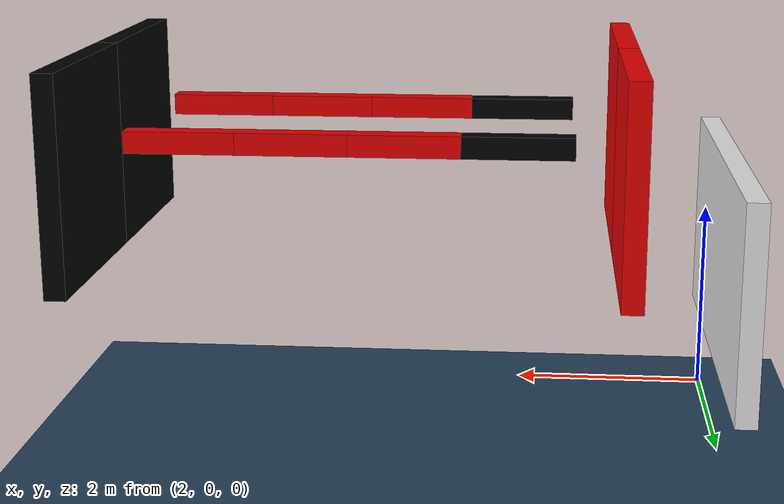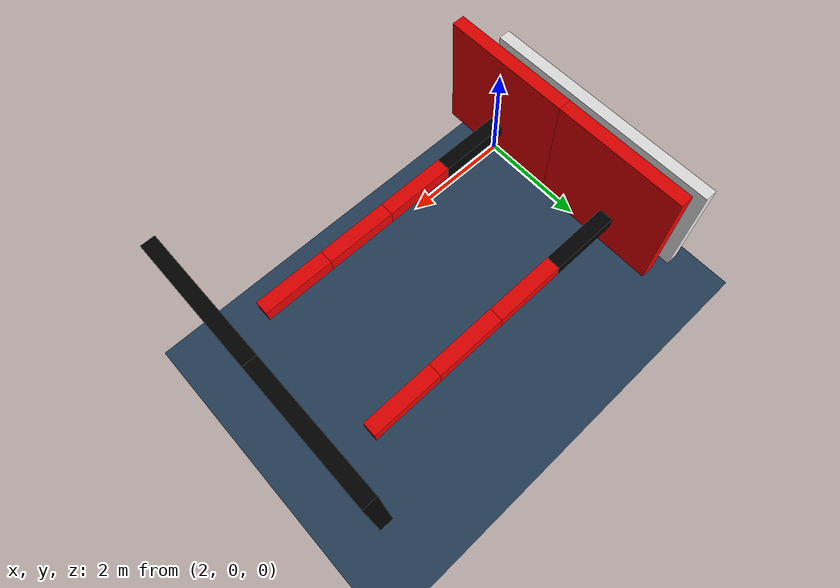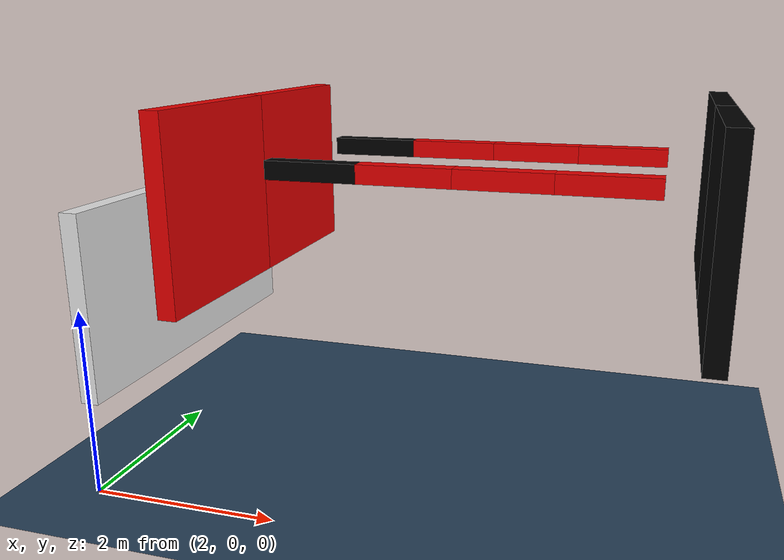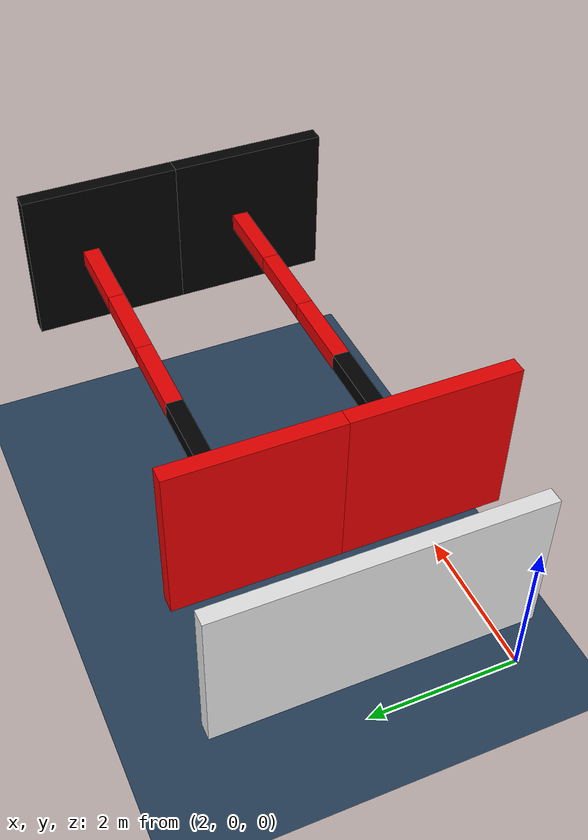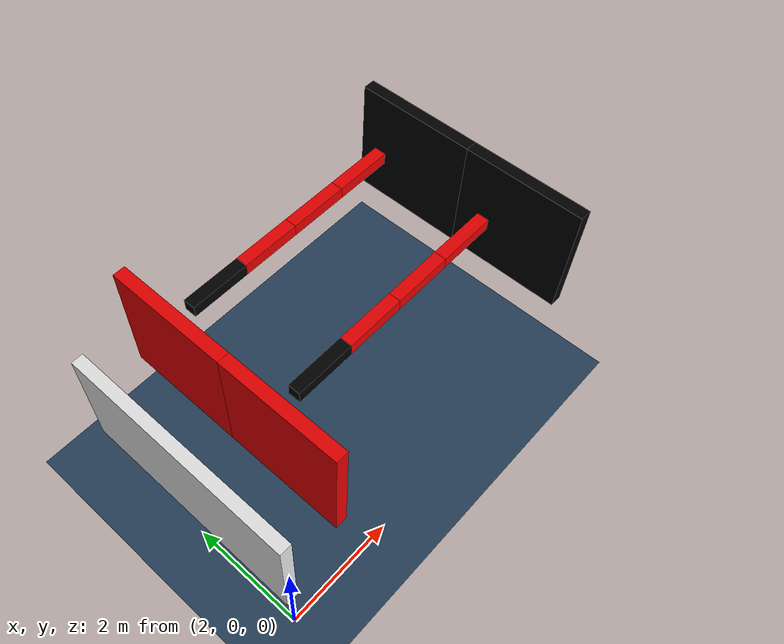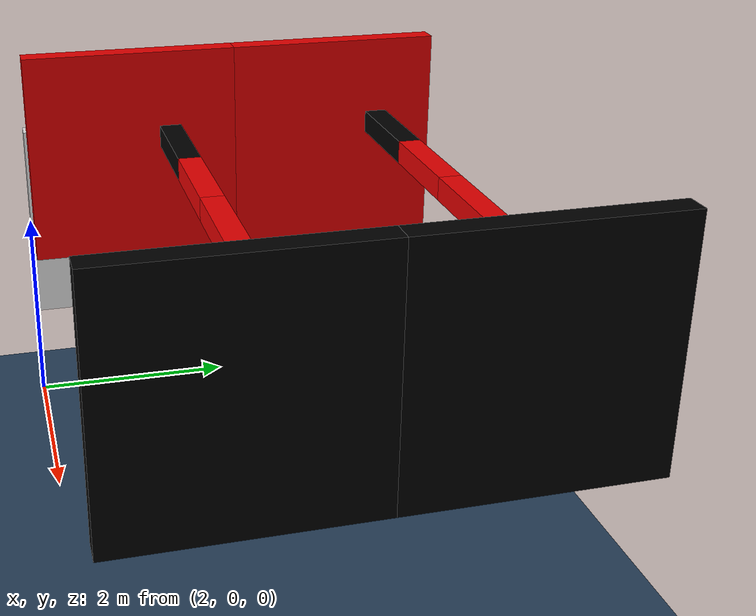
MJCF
<mujoco><option gravity="0 0 -9.81" /><worldbody><light diffuse="0.8 0.8 0.8" pos="0 0 3" dir="0 0 -1" /><geom size="10 10 .05" type="plane" material="grid" condim="3" /><body name="chassis" pos="2 2 2"><joint type="free" /><geom type="box" size=".1 2 1" rgba=".9 .9 .9 1" /><body name="module1module-top" pos="1 -1 1"><joint type="hinge" axis="1 0 0" range="-45 45" /><geom type="box" name="module1geom_free_plate" size=".1 1 1" rgba="0.9 0 0 1" /><body name="module1slide_box" pos="1 0.3 0.3"><joint name="module1slide_box_joint" type="slide" axis="1 0 0" range="-0.5 0.5" /><geom type="box" name="module1slide_box_body" size="0.5 0.1 0.1" rgba=" 0 0 0 1" /><body name="module1hingex_box_body" pos="1 0 0"><joint name="module1hingex_box_joint" type="hinge" axis="1 0 0" range="-45 45" /><geom type="box" name="module1hingex_box_body" size="0.5 0.1 0.1" rgba="0.9 0 0 1" /><body name="module1hingey_box_body" pos="1 0 0"><joint name="module1hingey_box_joint" type="hinge" axis="0 1 0" range="-45 45" /><geom type="box" name="module1geom_hingey_box" size="0.5 0.1 0.1" rgba="0.9 0 0 1" /><body name="module1hingez_box_body" pos="1 0 0"><joint name="module1hingez_box_joint" type="hinge" axis="0 0 1" range="-45 45" /><geom type="box" name="module1geom_hingez_box" size="0.5 0.1 0.1" rgba="0.9 0 0 1" /><body name="module1slide_plate" pos="1 -0.3 -0.3"><joint name="module1slide_plate_joint" type="slide" range="-0.5 0.5" /><geom type="box" name="module1slide_plate" size="0.1 1 1" rgba="0 0 0 1" /></body></body></body></body></body></body><body name="module2module-top" pos="1 1 1"><joint type="hinge" axis="1 0 0" range="-45 45" /><geom type="box" name="module2geom_free_plate" size=".1 1 1" rgba="0.9 0 0 1" /><body name="module2slide_box" pos="1 0.3 0.3"><joint name="module2slide_box_joint" type="slide" axis="1 0 0" range="-0.5 0.5" /><geom type="box" name="module2slide_box_body" size="0.5 0.1 0.1" rgba=" 0 0 0 1" /><body name="module2hingex_box_body" pos="1 0 0"><joint name="module2hingex_box_joint" type="hinge" axis="1 0 0" range="-45 45" /><geom type="box" name="module2hingex_box_body" size="0.5 0.1 0.1" rgba="0.9 0 0 1" /><body name="module2hingey_box_body" pos="1 0 0"><joint name="module2hingey_box_joint" type="hinge" axis="0 1 0" range="-45 45" /><geom type="box" name="module2geom_hingey_box" size="0.5 0.1 0.1" rgba="0.9 0 0 1" /><body name="module2hingez_box_body" pos="1 0 0"><joint name="module2hingez_box_joint" type="hinge" axis="0 0 1" range="-45 45" /><geom type="box" name="module2geom_hingez_box" size="0.5 0.1 0.1" rgba="0.9 0 0 1" /><body name="module2slide_plate" pos="1 -0.3 -0.3"><joint name="module2slide_plate_joint" type="slide" range="-0.5 0.5" /><geom type="box" name="module2slide_plate" size="0.1 1 1" rgba="0 0 0 1" /></body></body></body></body></body></body></body></worldbody><asset><texture type="skybox" builtin="gradient" rgb1=".3 .5 .7" rgb2="0 0 0" width="512" height="512" /><texture name="body" type="cube" builtin="flat" mark="cross" width="128" height="128" rgb1="0.8 0.6 0.4" rgb2="0.8 0.6 0.4" markrgb="1 1 1" random="0.01" /><texture name="grid" type="2d" builtin="checker" width="512" height="512" rgb1=".1 .2 .3" rgb2=".2 .3 .4" /><material name="body" texture="body" texuniform="true" rgba="0.8 0.6 .4 1" /><material name="grid" texture="grid" texrepeat="1 1" texuniform="true" reflectance=".2" /></asset><actuator><velocity joint="module1slide_box_joint" kv="2000" /></actuator></mujoco>
